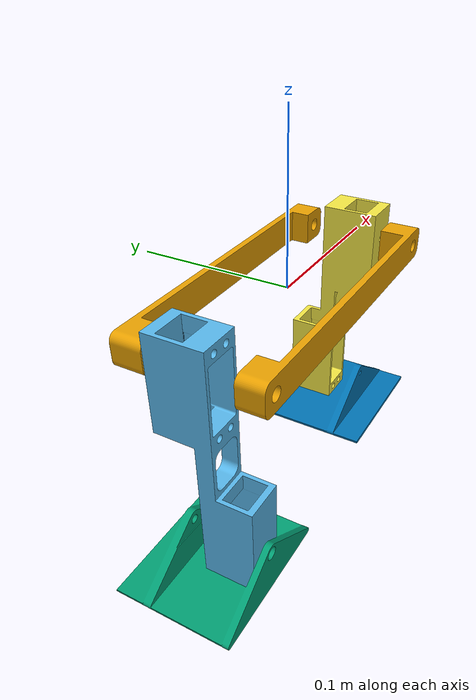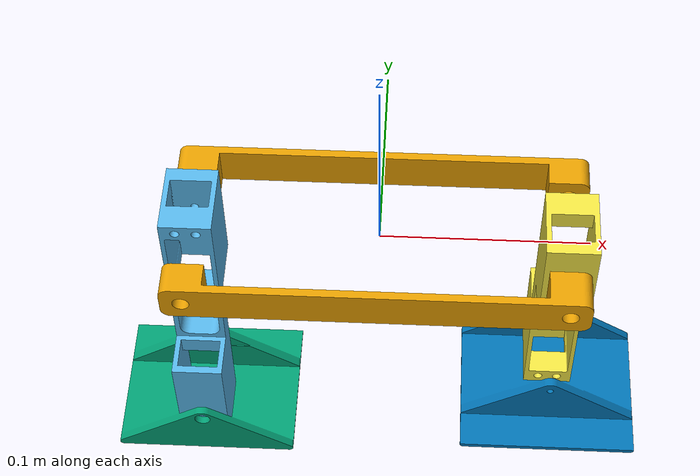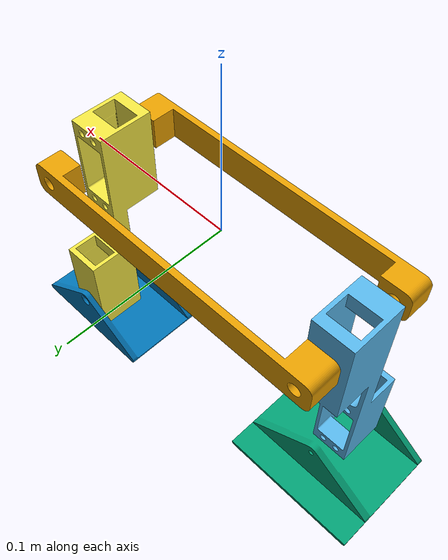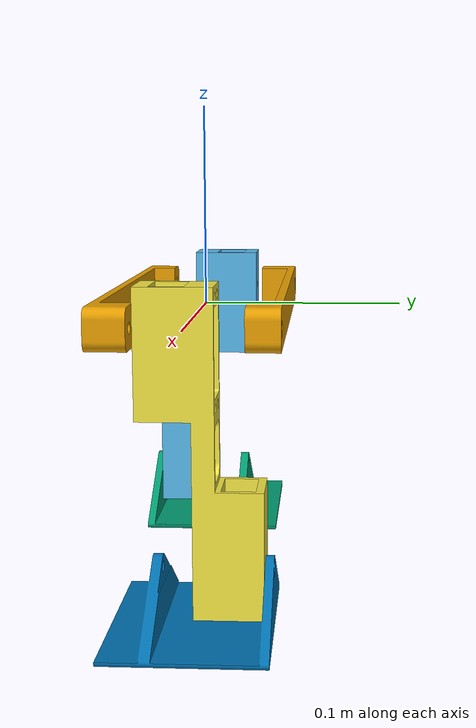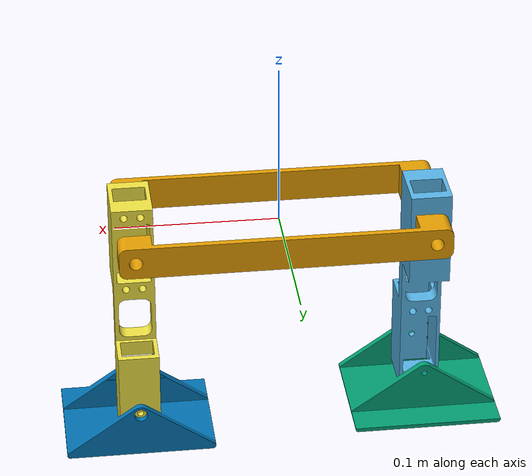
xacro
<?xml version="1.0" ?>
<robot xmlns:xacro="http://www.ros.org/wiki/xacro" name="kumi">

    <xacro:include filename="/home/andreas/dev_ws/src/kumi/description/xacro/variables.xacro"/>
    <xacro:include filename="/home/andreas/dev_ws/src/kumi/description/xacro/controls_effort.xacro"/>

    <xacro:property name="mesh_scale" value="0.001 0.001 0.001"/>
    <xacro:property name="body_mesh" value="/home/andreas/dev_ws/src/kumi/description/mesh/body_v5.STL"/>
    <xacro:property name="leg_mesh" value="/home/andreas/dev_ws/src/kumi/description/mesh/leg_v2.stl"/>
    <xacro:property name="foot_mesh" value="/home/andreas/dev_ws/src/kumi/description/mesh/piedino_v3.STL"/>

    <link name="body">
        <visual>
            <origin xyz="0 0 0" rpy="0 0 0"/>
            <geometry>
                <mesh filename="${body_mesh}" scale="${mesh_scale}"/>
            </geometry>
        </visual>
        <collision>
            <origin xyz="0 0 0" rpy="0 0 0"/>
            <geometry>
                <mesh filename="${body_mesh}" scale="${mesh_scale}"/>
            </geometry>
        </collision>
        <inertial>
            <origin xyz="0 0 0" rpy="0 0 0"/>
            <mass value="0.15"/>
            <inertia ixx="0.000226" ixy="0.0" ixz="0.0" iyy="0.000755" iyz="0.0" izz="0.000971"/>
        </inertial>
    </link>

    <joint name="front_sh" type="revolute">
        <origin xyz="${-lenght/2} -0.006 0" rpy="0 0 0"/>
        <parent link="body"/>
        <child link="front_leg"/>
        <axis xyz="0 1 0"/>
        <limit lower="${-pi/4}" upper="${3*pi/4}" velocity="5" effort="1000"/>
        <dynamics damping="0.5" friction="${joint_friction}"/>
    </joint>

    <gazebo reference="front_sh">
        <sensor name="front_sh_force_torque" type="force_torque">
            <always_on>true</always_on>
            <update_rate>500</update_rate>
            <force_torque>
                <frame>child</frame>
                <measure_direction>child_to_parent</measure_direction>
            </force_torque>
        </sensor>
    </gazebo>

    <link name="front_leg">
        <visual>
            <origin xyz="0 0 0" rpy="0 ${-pi/2} 0"/>
            <geometry>
                <mesh filename="${leg_mesh}" scale="${mesh_scale}"/>
            </geometry>
        </visual>
        <collision>
            <origin xyz="0 0 0" rpy="0 ${-pi/2} 0"/>
            <geometry>
                <mesh filename="${leg_mesh}" scale="${mesh_scale}"/>
            </geometry>
        </collision>
        <inertial>
            <origin xyz="0 0 0" rpy="0 ${-pi/2} 0"/>
            <mass value="0.3"/>
            <inertia ixx="0.000023773" ixy="0.0" ixz="0.0" iyy="0.000513246" iyz="0.0" izz="0.000524232"/>
        </inertial>
    </link>

    <joint name="front_ank" type="revolute">
        <origin xyz="0 0 ${-leg_len}" rpy="0 0 0"/>
        <parent link="front_leg"/>
        <child link="front_foot"/>
        <axis xyz="0 1 0"/>
        <limit lower="${-pi/2}" upper="${pi/2}" velocity="5" effort="1000"/>
        <dynamics damping="0.1" friction="${joint_friction}"/>
    </joint>

    <gazebo reference="front_ank">
        <sensor name="front_ank_force_torque" type="force_torque">
            <always_on>true</always_on>
            <update_rate>500</update_rate>
            <force_torque>
                <frame>child</frame>
                <measure_direction>child_to_parent</measure_direction>
            </force_torque>
        </sensor>
    </gazebo>

    <link name="front_foot">
        <visual>
            <origin xyz="0 0 0" rpy="${pi/2} 0  ${-pi/2}"/>
            <geometry>
                <mesh filename="${foot_mesh}" scale="${mesh_scale}"/>
            </geometry>
        </visual>
        <collision>
            <origin xyz="0 0 0" rpy="${pi/2} 0  ${-pi/2}"/>
            <geometry>
                <mesh filename="${foot_mesh}" scale="${mesh_scale}"/>
            </geometry>
        </collision>
        <inertial>
            <origin xyz="0 0 0" rpy="${pi/2} 0  ${-pi/2}"/>
            <mass value="0.15"/>
            <inertia ixx="0.000091" ixy="0.0" ixz="0.0" iyy="0.000165" iyz="0.0" izz="0.000091"/>
        </inertial>
    </link>

    <joint name="back_sh" type="revolute">
        <origin xyz="${lenght/2} 0.006 0" rpy="0 0 0"/>
        <parent link="body"/>
        <child link="back_leg"/>
        <axis xyz="0 -1 0"/>
        <limit lower="${-pi/4}" upper="${3*pi/4}" velocity="5" effort="1000"/>
        <dynamics damping="0.5" friction="${joint_friction}"/>
    </joint>

    <gazebo reference="back_sh">
        <sensor name="back_sh_force_torque" type="force_torque">
            <always_on>true</always_on>
            <update_rate>500</update_rate>
            <force_torque>
                <frame>child</frame>
                <measure_direction>child_to_parent</measure_direction>
            </force_torque>
        </sensor>
    </gazebo>

    <link name="back_leg">
        <visual>
            <origin xyz="0 0 0" rpy="0 ${-pi/2} ${pi}"/>
            <geometry>
                <mesh filename="${leg_mesh}" scale="${mesh_scale}"/>
            </geometry>
        </visual>
        <collision>
            <origin xyz="0 0 0" rpy="0 ${-pi/2} ${pi}"/>
            <geometry>
                <mesh filename="${leg_mesh}" scale="${mesh_scale}"/>
            </geometry>
        </collision>
        <inertial>
            <origin xyz="0 0 0" rpy="0 ${-pi/2} ${pi}"/>
            <mass value="0.3"/>
            <inertia ixx="0.000023773" ixy="0.0" ixz="0.0" iyy="0.000513246" iyz="0.0" izz="0.000524232"/>
        </inertial>
    </link>

    <joint name="back_ank" type="revolute">
        <origin xyz="0 0 ${-leg_len}" rpy="0 0 0"/>
        <parent link="back_leg"/>
        <child link="back_foot"/>
        <axis xyz="0 -1 0"/>
        <limit lower="${-pi/2}" upper="${pi/2}" velocity="5" effort="1000"/>
        <dynamics damping="0.1" friction="${joint_friction}"/>
    </joint>

    <gazebo reference="back_ank">
        <sensor name="back_ank_force_torque" type="force_torque">
            <always_on>true</always_on>
            <update_rate>500</update_rate>
            <force_torque>
                <frame>child</frame>
                <measure_direction>child_to_parent</measure_direction>
            </force_torque>
        </sensor>
    </gazebo>

    <link name="back_foot">
        <visual>
            <origin xyz="0 0 0" rpy="${pi/2} 0  ${pi/2}"/>
            <geometry>
                <mesh filename="${foot_mesh}" scale="${mesh_scale}"/>
            </geometry>
        </visual>
        <collision>
            <origin xyz="0 0 0" rpy="${pi/2} 0  ${pi/2}"/>
            <geometry>
                <mesh filename="${foot_mesh}" scale="${mesh_scale}"/>
            </geometry>
        </collision>
        <inertial>
            <origin xyz="0 0 0" rpy="${pi/2} 0  ${pi/2}"/>
            <mass value="0.15"/>
            <inertia ixx="0.000091" ixy="0.0" ixz="0.0" iyy="0.000165" iyz="0.0" izz="0.000091"/>
        </inertial>
    </link>

</robot>

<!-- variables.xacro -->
<robot xmlns:xacro="http://www.ros.org/wiki/xacro"  name="kumi">

    <xacro:property name="pi" value="3.14159" />
    <xacro:property name="ang_low_lim" value="0.85" />
    <xacro:property name="ang_up_lim" value="4" />
    <xacro:property name="thikness" value="0.15" />
    <xacro:property name="lenght" value="0.18" />
    <xacro:property name="leg_len" value="0.11" />
    <xacro:property name="foot_len" value="0.5" />
    <xacro:property name="toll" value="0.005" />
    <xacro:property name="mass" value="0.3" />
    <xacro:property name="joint_friction" value="0.2" />

</robot>
